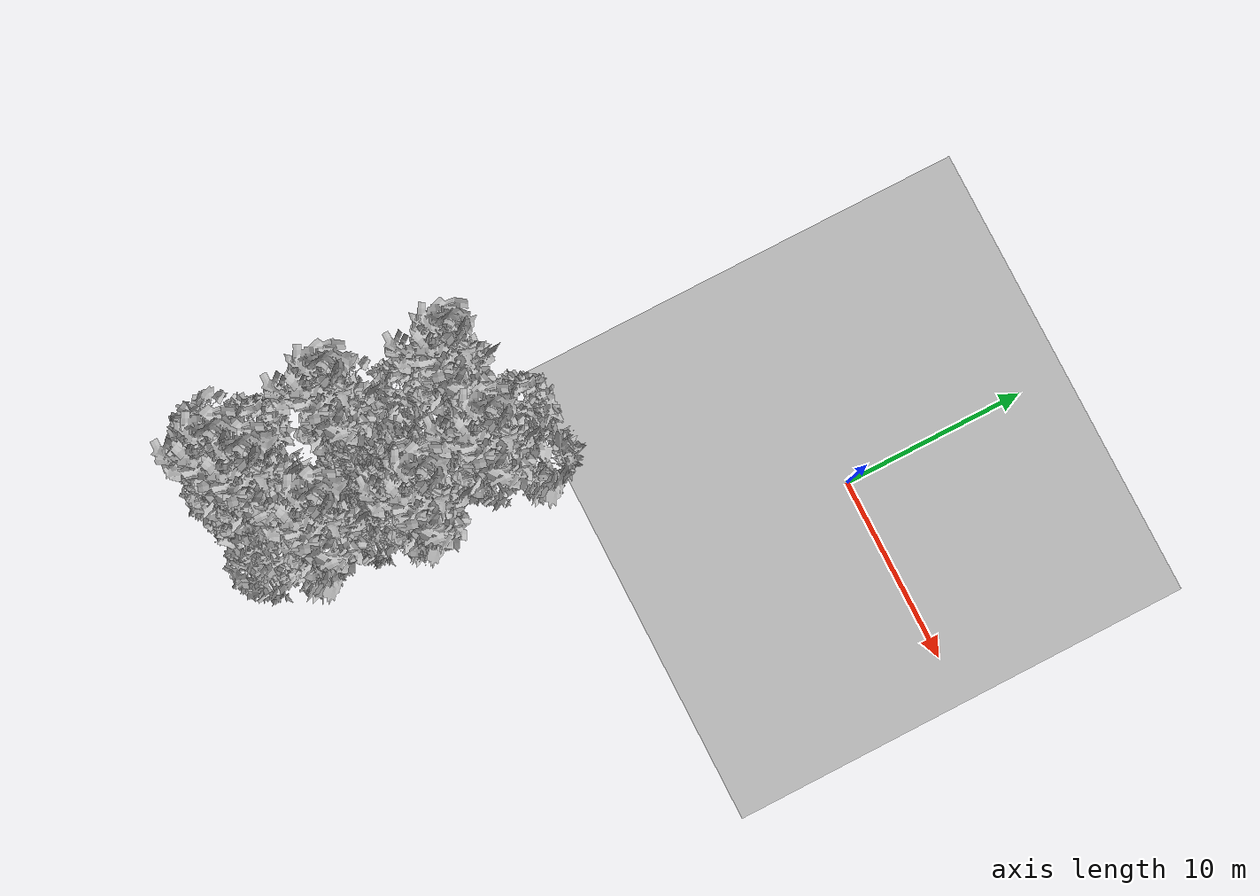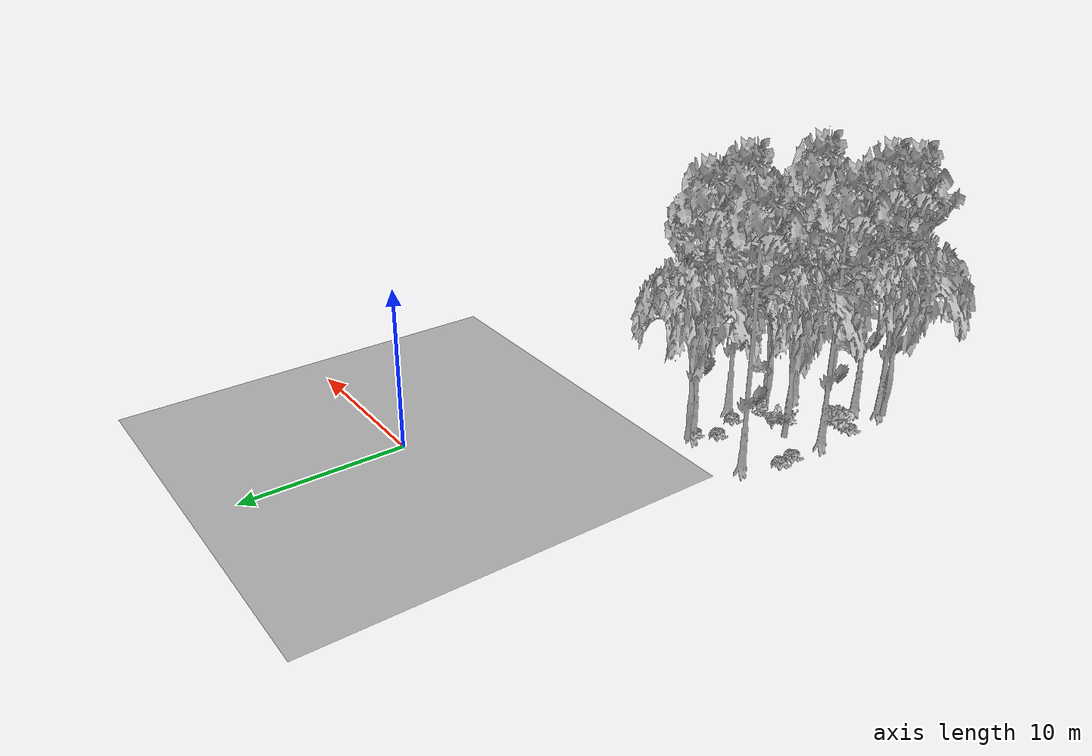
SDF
<sdf version="1.7">
 <world name="default">
  <model name="ground_plane">
   <static>1</static>
   <link name="link">
    <collision name="collision">
     <pose>-50 0 0 0 -0 0</pose>
     <geometry><plane><normal>0 0 1</normal><size>80 80</size></plane></geometry>
     <surface><contact><ode><min_depth>0.01</min_depth><max_vel>0</max_vel></ode></contact></surface>
    </collision>
    <visual name="grass">
     <cast_shadows>0</cast_shadows>
     <geometry>
      <mesh>
       <scale>0.46714285714285714 0.46714285714285714 0.1</scale>
       <uri>file://grass_plane/meshes/grass_plane.dae</uri>
      </mesh>
     </geometry>
    </visual>
   </link>
  </model>
  <model name="Tree 19">
   <static>1</static>
   <pose>-12.095675173574161 -24.86207846785586 0 1.57079 -0 0</pose>
   <link name="link">
    <collision name="collision">
     <geometry><mesh><scale>3.5 5 3.5</scale><uri>model://tree_9/meshes/tree_9.obj</uri></mesh></geometry>
    </collision>
    <visual name="visual">
     <geometry><mesh><scale>3.5 5 3.5</scale><uri>model://tree_9/meshes/tree_9.obj</uri></mesh></geometry>
    </visual>
   </link>
  </model>
  <model name="Tree 56">
   <static>1</static>
   <pose>-9.007855545328209 -20.274524127763787 0 1.57079 -0 0</pose>
   <link name="link">
    <collision name="collision">
     <geometry><mesh><scale>3.5 5 3.5</scale><uri>model://tree_2/meshes/tree_2.obj</uri></mesh></geometry>
    </collision>
    <visual name="visual">
     <geometry><mesh><scale>3.5 5 3.5</scale><uri>model://tree_2/meshes/tree_2.obj</uri></mesh></geometry>
    </visual>
   </link>
  </model>
  <model name="Tree 105">
   <static>1</static>
   <pose>-8.690303162912855 -14.64886743347309 0 1.57079 -0 0</pose>
   <link name="link">
    <collision name="collision">
     <geometry><mesh><scale>3.5 5 3.5</scale><uri>model://tree_9/meshes/tree_9.obj</uri></mesh></geometry>
    </collision>
    <visual name="visual">
     <geometry><mesh><scale>3.5 5 3.5</scale><uri>model://tree_9/meshes/tree_9.obj</uri></mesh></geometry>
    </visual>
   </link>
  </model>
  <model name="Tree 128">
   <static>1</static>
   <pose>-9.131619894588255 -20.299058247259456 0 1.57079 -0 0</pose>
   <link name="link">
    <collision name="collision">
     <geometry><mesh><scale>3.5 5 3.5</scale><uri>model://tree_2/meshes/tree_2.obj</uri></mesh></geometry>
    </collision>
    <visual name="visual">
     <geometry><mesh><scale>3.5 5 3.5</scale><uri>model://tree_2/meshes/tree_2.obj</uri></mesh></geometry>
    </visual>
   </link>
  </model>
  <model name="Tree 156">
   <static>1</static>
   <pose>-9.70917940702935 -25.367232643498696 0 1.57079 -0 0</pose>
   <link name="link">
    <collision name="collision">
     <geometry><mesh><scale>3.5 5 3.5</scale><uri>model://tree_2/meshes/tree_2.obj</uri></mesh></geometry>
    </collision>
    <visual name="visual">
     <geometry><mesh><scale>3.5 5 3.5</scale><uri>model://tree_2/meshes/tree_2.obj</uri></mesh></geometry>
    </visual>
   </link>
  </model>
  <model name="Tree 162">
   <static>1</static>
   <pose>-7.683265776140836 -18.435487093770533 0 1.57079 -0 0</pose>
   <link name="link">
    <collision name="collision">
     <geometry><mesh><scale>3.5 5 3.5</scale><uri>model://tree_9/meshes/tree_9.obj</uri></mesh></geometry>
    </collision>
    <visual name="visual">
     <geometry><mesh><scale>3.5 5 3.5</scale><uri>model://tree_9/meshes/tree_9.obj</uri></mesh></geometry>
    </visual>
   </link>
  </model>
  <model name="Tree 170">
   <static>1</static>
   <pose>-13.718294126994234 -25.68786183314917 0 1.57079 -0 0</pose>
   <link name="link">
    <collision name="collision">
     <geometry><mesh><scale>3.5 5 3.5</scale><uri>model://tree_2/meshes/tree_2.obj</uri></mesh></geometry>
    </collision>
    <visual name="visual">
     <geometry><mesh><scale>3.5 5 3.5</scale><uri>model://tree_2/meshes/tree_2.obj</uri></mesh></geometry>
    </visual>
   </link>
  </model>
  <model name="Tree 173">
   <static>1</static>
   <pose>-13.67995059948596 -20.13671449378699 0 1.57079 -0 0</pose>
   <link name="link">
    <collision name="collision">
     <geometry><mesh><scale>3.5 5 3.5</scale><uri>model://tree_9/meshes/tree_9.obj</uri></mesh></geometry>
    </collision>
    <visual name="visual">
     <geometry><mesh><scale>3.5 5 3.5</scale><uri>model://tree_9/meshes/tree_9.obj</uri></mesh></geometry>
    </visual>
   </link>
  </model>
  <model name="Tree 252">
   <static>1</static>
   <pose>-12.85199944368999 -14.552398443594772 0 1.57079 -0 0</pose>
   <link name="link">
    <collision name="collision">
     <geometry><mesh><scale>3.5 5 3.5</scale><uri>model://tree_9/meshes/tree_9.obj</uri></mesh></geometry>
    </collision>
    <visual name="visual">
     <geometry><mesh><scale>3.5 5 3.5</scale><uri>model://tree_9/meshes/tree_9.obj</uri></mesh></geometry>
    </visual>
   </link>
  </model>
  <model name="Tree 270">
   <static>1</static>
   <pose>-8.93463884894237 -14.105196841694276 0 1.57079 -0 0</pose>
   <link name="link">
    <collision name="collision">
     <geometry><mesh><scale>3.5 5 3.5</scale><uri>model://tree_2/meshes/tree_2.obj</uri></mesh></geometry>
    </collision>
    <visual name="visual">
     <geometry><mesh><scale>3.5 5 3.5</scale><uri>model://tree_2/meshes/tree_2.obj</uri></mesh></geometry>
    </visual>
   </link>
  </model>
  <model name="Tree 431">
   <static>1</static>
   <pose>-13.25346851255959 -25.697757458315095 0 1.57079 -0 0</pose>
   <link name="link">
    <collision name="collision">
     <geometry><mesh><scale>3.5 5 3.5</scale><uri>model://tree_9/meshes/tree_9.obj</uri></mesh></geometry>
    </collision>
    <visual name="visual">
     <geometry><mesh><scale>3.5 5 3.5</scale><uri>model://tree_9/meshes/tree_9.obj</uri></mesh></geometry>
    </visual>
   </link>
  </model>
  <model name="Tree 446">
   <static>1</static>
   <pose>-12.023788990976492 -18.97114946549822 0 1.57079 -0 0</pose>
   <link name="link">
    <collision name="collision">
     <geometry><mesh><scale>3.5 5 3.5</scale><uri>model://tree_2/meshes/tree_2.obj</uri></mesh></geometry>
    </collision>
    <visual name="visual">
     <geometry><mesh><scale>3.5 5 3.5</scale><uri>model://tree_2/meshes/tree_2.obj</uri></mesh></geometry>
    </visual>
   </link>
  </model>
  <model name="Tree 499">
   <static>1</static>
   <pose>-8.843584415145429 -23.007887803140534 0 1.57079 -0 0</pose>
   <link name="link">
    <collision name="collision">
     <geometry><mesh><scale>3.5 5 3.5</scale><uri>model://tree_9/meshes/tree_9.obj</uri></mesh></geometry>
    </collision>
    <visual name="visual">
     <geometry><mesh><scale>3.5 5 3.5</scale><uri>model://tree_9/meshes/tree_9.obj</uri></mesh></geometry>
    </visual>
   </link>
  </model>
  <model name="Bush 22">
   <static>1</static>
   <pose>-9.310952950235766 -19.39450072031212 0 1.57079 -0 0</pose>
   <link name="link">
    <collision name="collision">
     <geometry><mesh><scale>2 2 2</scale><uri>model://bush_4/meshes/bush_4.obj</uri></mesh></geometry>
     <surface><contact><collide_without_contact>false</collide_without_contact></contact></surface>
    </collision>
    <visual name="visual">
     <geometry><mesh><scale>2 2 2</scale><uri>model://bush_4/meshes/bush_4.obj</uri></mesh></geometry>
    </visual>
   </link>
  </model>
  <model name="Bush 185">
   <static>1</static>
   <pose>-11.909513957615747 -19.036145504504887 0 1.57079 -0 0</pose>
   <link name="link">
    <collision name="collision">
     <geometry><mesh><scale>2 2 2</scale><uri>model://bush_5/meshes/bush_5.obj</uri></mesh></geometry>
     <surface><contact><collide_without_contact>false</collide_without_contact></contact></surface>
    </collision>
    <visual name="visual">
     <geometry><mesh><scale>2 2 2</scale><uri>model://bush_5/meshes/bush_5.obj</uri></mesh></geometry>
    </visual>
   </link>
  </model>
  <model name="Bush 236">
   <static>1</static>
   <pose>-8.792212488910828 -14.757244755229717 0 1.57079 -0 0</pose>
   <link name="link">
    <collision name="collision">
     <geometry><mesh><scale>2 2 2</scale><uri>model://bush_2/meshes/bush_2.obj</uri></mesh></geometry>
     <surface><contact><collide_without_contact>false</collide_without_contact></contact></surface>
    </collision>
    <visual name="visual">
     <geometry><mesh><scale>2 2 2</scale><uri>model://bush_2/meshes/bush_2.obj</uri></mesh></geometry>
    </visual>
   </link>
  </model>
  <model name="Bush 268">
   <static>1</static>
   <pose>-10.903767528476592 -18.932764292029987 0 1.57079 -0 0</pose>
   <link name="link">
    <collision name="collision">
     <geometry><mesh><scale>2 2 2</scale><uri>model://bush_0/meshes/bush_0.obj</uri></mesh></geometry>
     <surface><contact><collide_without_contact>false</collide_without_contact></contact></surface>
    </collision>
    <visual name="visual">
     <geometry><mesh><scale>2 2 2</scale><uri>model://bush_0/meshes/bush_0.obj</uri></mesh></geometry>
    </visual>
   </link>
  </model>
  <model name="Bush 326">
   <static>1</static>
   <pose>-8.855194743919252 -17.768864304823097 0 1.57079 -0 0</pose>
   <link name="link">
    <collision name="collision">
     <geometry><mesh><scale>2 2 2</scale><uri>model://bush_2/meshes/bush_2.obj</uri></mesh></geometry>
     <surface><contact><collide_without_contact>false</collide_without_contact></contact></surface>
    </collision>
    <visual name="visual">
     <geometry><mesh><scale>2 2 2</scale><uri>model://bush_2/meshes/bush_2.obj</uri></mesh></geometry>
    </visual>
   </link>
  </model>
  <model name="Bush 341">
   <static>1</static>
   <pose>-13.74093485033421 -22.62711708502291 0 1.57079 -0 0</pose>
   <link name="link">
    <collision name="collision">
     <geometry><mesh><scale>2 2 2</scale><uri>model://bush_2/meshes/bush_2.obj</uri></mesh></geometry>
     <surface><contact><collide_without_contact>false</collide_without_contact></contact></surface>
    </collision>
    <visual name="visual">
     <geometry><mesh><scale>2 2 2</scale><uri>model://bush_2/meshes/bush_2.obj</uri></mesh></geometry>
    </visual>
   </link>
  </model>
  <model name="Bush 447">
   <static>1</static>
   <pose>-9.637236201160057 -15.833726613611965 0 1.57079 -0 0</pose>
   <link name="link">
    <collision name="collision">
     <geometry><mesh><scale>2 2 2</scale><uri>model://bush_2/meshes/bush_2.obj</uri></mesh></geometry>
     <surface><contact><collide_without_contact>false</collide_without_contact></contact></surface>
    </collision>
    <visual name="visual">
     <geometry><mesh><scale>2 2 2</scale><uri>model://bush_2/meshes/bush_2.obj</uri></mesh></geometry>
    </visual>
   </link>
  </model>
  <model name="Bush 562">
   <static>1</static>
   <pose>-13.836079892073172 -17.679606192250397 0 1.57079 -0 0</pose>
   <link name="link">
    <collision name="collision">
     <geometry><mesh><scale>2 2 2</scale><uri>model://bush_2/meshes/bush_2.obj</uri></mesh></geometry>
     <surface><contact><collide_without_contact>false</collide_without_contact></contact></surface>
    </collision>
    <visual name="visual">
     <geometry><mesh><scale>2 2 2</scale><uri>model://bush_2/meshes/bush_2.obj</uri></mesh></geometry>
    </visual>
   </link>
  </model>
  <model name="Bush 570">
   <static>1</static>
   <pose>-13.380983678631495 -22.02246620998408 0 1.57079 -0 0</pose>
   <link name="link">
    <collision name="collision">
     <geometry><mesh><scale>2 2 2</scale><uri>model://bush_1/meshes/bush_1.obj</uri></mesh></geometry>
     <surface><contact><collide_without_contact>false</collide_without_contact></contact></surface>
    </collision>
    <visual name="visual">
     <geometry><mesh><scale>2 2 2</scale><uri>model://bush_1/meshes/bush_1.obj</uri></mesh></geometry>
    </visual>
   </link>
  </model>
  <model name="Bush 604">
   <static>1</static>
   <pose>-13.947132057101925 -16.606036080540516 0 1.57079 -0 0</pose>
   <link name="link">
    <collision name="collision">
     <geometry><mesh><scale>2 2 2</scale><uri>model://bush_2/meshes/bush_2.obj</uri></mesh></geometry>
     <surface><contact><collide_without_contact>false</collide_without_contact></contact></surface>
    </collision>
    <visual name="visual">
     <geometry><mesh><scale>2 2 2</scale><uri>model://bush_2/meshes/bush_2.obj</uri></mesh></geometry>
    </visual>
   </link>
  </model>
 </world>
</sdf>
